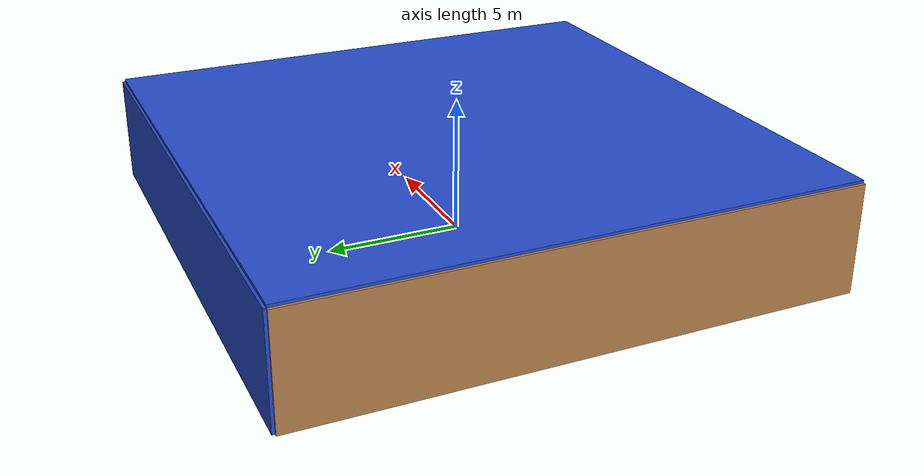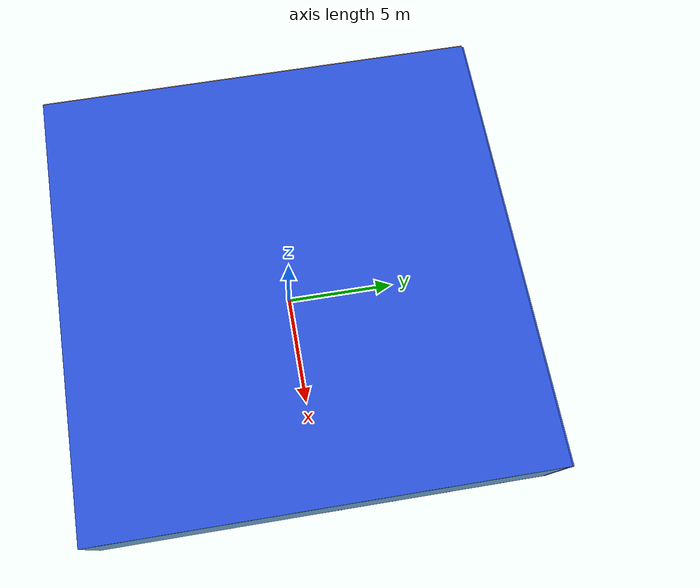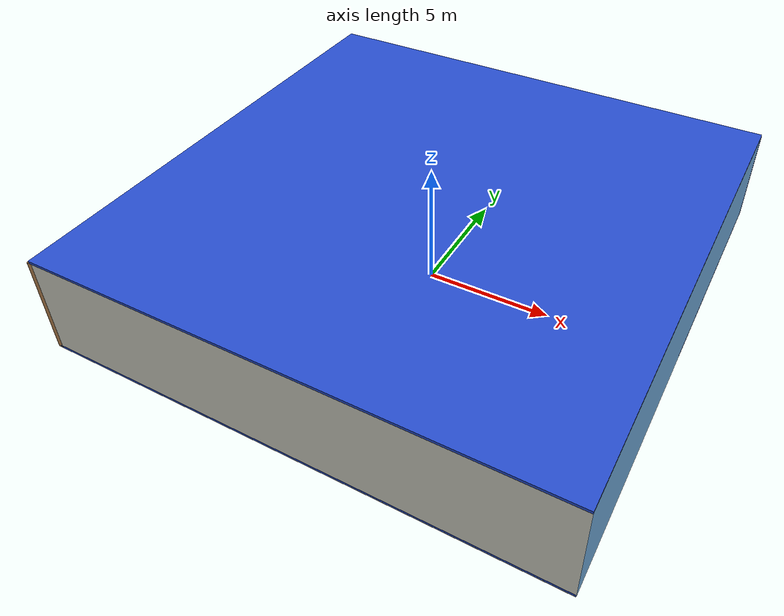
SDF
<sdf version="1.4">
 <world name="default">
  <physics type="ode">
   <max_step_size>0.001</max_step_size>
   <real_time_factor>1</real_time_factor>
   <real_time_update_rate>1000</real_time_update_rate>
   <gravity>0 0 -9.8</gravity>
  </physics>
  <scene><ambient>0.4 0.4 0.4 1</ambient><background>0.7 0.7 0.7 1</background><shadows>1</shadows></scene>
  <model name="Surrounding">
   <static>1</static>
   <link name="Ceiling">
    <collision name="Ceiling_Collision"><geometry><box><size>20 20 0.1</size></box></geometry></collision>
    <visual name="Ceiling_Visual">
     <geometry><box><size>20 20 0.1</size></box></geometry>
     <material>
      <script><uri>file://media/materials/scripts/gazebo.material</uri><name>Gazebo/BlueGlow</name></script>
     </material>
    </visual>
    <pose>0 0 4.05 0 0 0</pose>
   </link>
   <link name="Wall_South">
    <collision name="Wall_South_Collision">
     <geometry><box><size>20 0 4</size></box></geometry>
     <pose>0 0 2 0 -0 0</pose>
    </collision>
    <visual name="Wall_South_Visual">
     <pose>0 0 2 0 -0 0</pose>
     <geometry><box><size>20 0 4</size></box></geometry>
     <material>
      <script><uri>file://media/materials/scripts/gazebo.material</uri><name>Gazebo/PaintedWall</name></script>
     </material>
    </visual>
    <velocity_decay><linear>0</linear><angular>0</angular></velocity_decay>
    <pose>0 -10 0 0 -0 0</pose>
   </link>
   <link name="Wall_East">
    <collision name="Wall_21_Collision">
     <geometry><box><size>20 0 4</size></box></geometry>
     <pose>0 0 2 0 -0 0</pose>
    </collision>
    <visual name="Wall_21_Visual">
     <pose>0 0 2 0 -0 0</pose>
     <geometry><box><size>20 0 4</size></box></geometry>
     <material>
      <script><uri>file://media/materials/scripts/gazebo.material</uri><name>Gazebo/SkyBlue</name></script>
     </material>
    </visual>
    <velocity_decay><linear>0</linear><angular>0</angular></velocity_decay>
    <pose>10 0 0 0 -0 1.5708</pose>
   </link>
   <link name="Wall_North">
    <collision name="Wall_22_Collision">
     <geometry><box><size>20 0.2 4</size></box></geometry>
     <pose>0 0 2 0 -0 0</pose>
    </collision>
    <visual name="Wall_22_Visual">
     <pose>0 0 2 0 -0 0</pose>
     <geometry><box><size>20 0.2 4</size></box></geometry>
     <material>
      <script><uri>file://media/materials/scripts/gazebo.material</uri><name>Gazebo/Blue</name></script>
     </material>
    </visual>
    <velocity_decay><linear>0</linear><angular>0</angular></velocity_decay>
    <pose>0 10 0 0 -0 0</pose>
   </link>
   <link name="Wall_West">
    <collision name="Wall_23_Collision">
     <geometry><box><size>20 0.2 4</size></box></geometry>
     <pose>0 0 2 0 -0 0</pose>
    </collision>
    <visual name="Wall_23_Visual">
     <pose>0 0 2 0 -0 0</pose>
     <geometry><box><size>20 0.2 4</size></box></geometry>
     <material>
      <script><uri>file://media/materials/scripts/gazebo.material</uri><name>Gazebo/Wood</name></script>
     </material>
    </visual>
    <velocity_decay><linear>0</linear><angular>0</angular></velocity_decay>
    <pose>-10 0 0 0 0 -1.5708</pose>
   </link>
   <link name="Ground_link">
    <collision name="collision">
     <pose>0 0 .05 0 -0 0</pose>
     <geometry><box><size>20 20 0.1</size></box></geometry>
    </collision>
    <visual name="visual">
     <pose>0 0 .05 0 -0 0</pose>
     <geometry><box><size>20 20 0.1</size></box></geometry>
     <material>
      <script><uri>file://media/materials/scripts/gazebo.material</uri><name>Gazebo/Blue</name></script>
     </material>
    </visual>
   </link>
   <static>1</static>
  </model>
  <spherical_coordinates>
   <surface_model>EARTH_WGS84</surface_model>
   <latitude_deg>0</latitude_deg>
   <longitude_deg>0</longitude_deg>
   <elevation>0</elevation>
   <heading_deg>0</heading_deg>
  </spherical_coordinates>
  <light name="lightball_0" type="diffuse">
   <diffuse>0.8 0.8 0.8 1</diffuse>
   <specular>0.2 0.2 0.2 1</specular>
   <attenuation>
    <range>100</range>
    <constant>0.7</constant>
    <linear>0.01</linear>
    <quadratic>0.001</quadratic>
   </attenuation>
   <direction>-0.5 0.1 -0.9</direction>
   <pose>6.04925240644 -0.171639191797 3.28046520027 0 0 0</pose>
  </light>
  <light name="lightball_1" type="diffuse">
   <diffuse>0.8 0.8 0.8 1</diffuse>
   <specular>0.2 0.2 0.2 1</specular>
   <attenuation>
    <range>100</range>
    <constant>0.7</constant>
    <linear>0.01</linear>
    <quadratic>0.001</quadratic>
   </attenuation>
   <direction>-0.5 0.1 -0.9</direction>
   <pose>-4.75241185361 4.21369402656 1.49101045478 0 0 0</pose>
  </light>
  <light name="lightball_2" type="diffuse">
   <diffuse>0.8 0.8 0.8 1</diffuse>
   <specular>0.2 0.2 0.2 1</specular>
   <attenuation>
    <range>100</range>
    <constant>0.7</constant>
    <linear>0.01</linear>
    <quadratic>0.001</quadratic>
   </attenuation>
   <direction>-0.5 0.1 -0.9</direction>
   <pose>3.74761045633 2.26099647482 3.4018581596 0 0 0</pose>
  </light>
  <light name="lightball_3" type="diffuse">
   <diffuse>0.8 0.8 0.8 1</diffuse>
   <specular>0.2 0.2 0.2 1</specular>
   <attenuation>
    <range>100</range>
    <constant>0.7</constant>
    <linear>0.01</linear>
    <quadratic>0.001</quadratic>
   </attenuation>
   <direction>-0.5 0.1 -0.9</direction>
   <pose>-4.35224617007 3.83229177058 1.67522074982 0 0 0</pose>
  </light>
  <light name="lightball_4" type="diffuse">
   <diffuse>0.8 0.8 0.8 1</diffuse>
   <specular>0.2 0.2 0.2 1</specular>
   <attenuation>
    <range>100</range>
    <constant>0.7</constant>
    <linear>0.01</linear>
    <quadratic>0.001</quadratic>
   </attenuation>
   <direction>-0.5 0.1 -0.9</direction>
   <pose>5.51615872868 -9.59937850316 2.76212713174 0 0 0</pose>
  </light>
  <light name="lightball_5" type="diffuse">
   <diffuse>0.8 0.8 0.8 1</diffuse>
   <specular>0.2 0.2 0.2 1</specular>
   <attenuation>
    <range>100</range>
    <constant>0.7</constant>
    <linear>0.01</linear>
    <quadratic>0.001</quadratic>
   </attenuation>
   <direction>-0.5 0.1 -0.9</direction>
   <pose>4.28242817947 -7.58874267537 1.29135221258 0 0 0</pose>
  </light>
  <light name="lightball_6" type="diffuse">
   <diffuse>0.8 0.8 0.8 1</diffuse>
   <specular>0.2 0.2 0.2 1</specular>
   <attenuation>
    <range>100</range>
    <constant>0.7</constant>
    <linear>0.01</linear>
    <quadratic>0.001</quadratic>
   </attenuation>
   <direction>-0.5 0.1 -0.9</direction>
   <pose>-8.41398896876 8.48208177617 0.563222921778 0 0 0</pose>
  </light>
  <light name="lightball_7" type="diffuse">
   <diffuse>0.8 0.8 0.8 1</diffuse>
   <specular>0.2 0.2 0.2 1</specular>
   <attenuation>
    <range>100</range>
    <constant>0.7</constant>
    <linear>0.01</linear>
    <quadratic>0.001</quadratic>
   </attenuation>
   <direction>-0.5 0.1 -0.9</direction>
   <pose>1.17812282786 -2.53768060606 2.86595786905 0 0 0</pose>
  </light>
  <light name="lightball_8" type="diffuse">
   <diffuse>0.8 0.8 0.8 1</diffuse>
   <specular>0.2 0.2 0.2 1</specular>
   <attenuation>
    <range>100</range>
    <constant>0.7</constant>
    <linear>0.01</linear>
    <quadratic>0.001</quadratic>
   </attenuation>
   <direction>-0.5 0.1 -0.9</direction>
   <pose>-7.30109625632 6.43860643873 2.43831185603 0 0 0</pose>
  </light>
  <light name="lightball_9" type="diffuse">
   <diffuse>0.8 0.8 0.8 1</diffuse>
   <specular>0.2 0.2 0.2 1</specular>
   <attenuation>
    <range>100</range>
    <constant>0.7</constant>
    <linear>0.01</linear>
    <quadratic>0.001</quadratic>
   </attenuation>
   <direction>-0.5 0.1 -0.9</direction>
   <pose>-8.83122582588 0.525857132807 0.825209856469 0 0 0</pose>
  </light>
  <light name="lightball_10" type="diffuse">
   <diffuse>0.8 0.8 0.8 1</diffuse>
   <specular>0.2 0.2 0.2 1</specular>
   <attenuation>
    <range>100</range>
    <constant>0.7</constant>
    <linear>0.01</linear>
    <quadratic>0.001</quadratic>
   </attenuation>
   <direction>-0.5 0.1 -0.9</direction>
   <pose>-7.588412721 -2.7294190061 1.5312404711 0 0 0</pose>
  </light>
  <include>
   <uri>model://construction_cone</uri>
   <pose>-4.65025532608 -5.12636815431 0 0 0 1.61151376128</pose>
  </include>
  <include><uri>model://table</uri><pose>2.16660198164 -4.73695577357 0 0 0 2.30362281982</pose></include>
  <include><uri>model://table</uri><pose>4.63387336591 -8.07736273833 0 0 0 2.45129689332</pose></include>
  <include>
   <uri>model://construction_cone</uri>
   <pose>5.29671158323 -0.98832220806 0 0 0 1.08722505785</pose>
  </include>
  <include>
   <uri>model://textured_shapes</uri>
   <pose>4.37526012321 6.81361531432 0 0 0 0.842216170266</pose>
  </include>
 </world>
</sdf>

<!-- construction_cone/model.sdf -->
<sdf version="1.5">
  <model name="Construction Cone">
    <link name="link">
      <collision name="collision">
        <geometry>
          <mesh>
            <scale>10 10 10</scale>
            <uri>file://isr-testbed/construction_cone/meshes/construction_cone.dae</uri>
          </mesh>
        </geometry>
      </collision>
      <visual name="visual">
        <geometry>
          <mesh>
            <scale>10 10 10</scale>
            <uri>file://isr-testbed/construction_cone/meshes/construction_cone.dae</uri>
          </mesh>
        </geometry>
      </visual>
    </link>
  </model>
</sdf>

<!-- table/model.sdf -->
<sdf version="1.5">
  <model name="table">
    <static>true</static>
    <link name="link">
      <collision name="surface">
        <pose>0 0 1.0 0 0 0</pose>
        <geometry>
          <box>
            <size>1.5 0.8 0.03</size>
          </box>
        </geometry>
        <surface>
          <friction>
            <ode>
              <mu>0.6</mu>
              <mu2>0.6</mu2>
            </ode>
          </friction>
        </surface>
      </collision>
      <visual name="visual1">
        <pose>0 0 1.0 0 0 0</pose>
        <geometry>
          <box>
            <size>1.5 0.8 0.03</size>
          </box>
        </geometry>
        <material>
          <script>
            <uri>model://media/materials/scripts/gazebo.material</uri>
            <name>Gazebo/Wood</name>
          </script>
        </material>
      </visual>
      <collision name="front_left_leg">
        <pose>0.68 0.38 0.5 0 0 0</pose>
        <geometry>
          <cylinder>
            <radius>0.02</radius>
            <length>1.0</length>
          </cylinder>
        </geometry>
      </collision>
      <visual name="front_left_leg">
        <pose>0.68 0.38 0.5 0 0 0</pose>
        <geometry>
          <cylinder>
            <radius>0.02</radius>
            <length>1.0</length>
          </cylinder>
        </geometry>
        <material>
          <script>
            <uri>model://media/materials/scripts/gazebo.material</uri>
            <name>Gazebo/Grey</name>
          </script>
        </material>
      </visual>
      <collision name="front_right_leg">
        <pose>0.68 -0.38 0.5 0 0 0</pose>
        <geometry>
          <cylinder>
            <radius>0.02</radius>
            <length>1.0</length>
          </cylinder>
        </geometry>
      </collision>
      <visual name="front_right_leg">
        <pose>0.68 -0.38 0.5 0 0 0</pose>
        <geometry>
          <cylinder>
            <radius>0.02</radius>
            <length>1.0</length>
          </cylinder>
        </geometry>
        <material>
          <script>
            <uri>model://media/materials/scripts/gazebo.material</uri>
            <name>Gazebo/Grey</name>
          </script>
        </material>
      </visual>
      <collision name="back_right_leg">
        <pose>-0.68 -0.38 0.5 0 0 0</pose>
        <geometry>
          <cylinder>
            <radius>0.02</radius>
            <length>1.0</length>
          </cylinder>
        </geometry>
      </collision>
      <visual name="back_right_leg">
        <pose>-0.68 -0.38 0.5 0 0 0</pose>
        <geometry>
          <cylinder>
            <radius>0.02</radius>
            <length>1.0</length>
          </cylinder>
        </geometry>
        <material>
          <script>
            <uri>model://media/materials/scripts/gazebo.material</uri>
            <name>Gazebo/Grey</name>
          </script>
        </material>
      </visual>
      <collision name="back_left_leg">
        <pose>-0.68 0.38 0.5 0 0 0</pose>
        <geometry>
          <cylinder>
            <radius>0.02</radius>
            <length>1.0</length>
          </cylinder>
        </geometry>
      </collision>
      <visual name="back_left_leg">
        <pose>-0.68 0.38 0.5 0 0 0</pose>
        <geometry>
          <cylinder>
            <radius>0.02</radius>
            <length>1.0</length>
          </cylinder>
        </geometry>
        <material>
          <script>
            <uri>model://media/materials/scripts/gazebo.material</uri>
            <name>Gazebo/Grey</name>
          </script>
        </material>
      </visual>
    </link>
  </model>
</sdf>

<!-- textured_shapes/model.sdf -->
<sdf version="1.6">
  <model name="textured_shapes">
    <pose>0 0 0.5 0 0 0</pose>
    <link name="box">
      <pose>0 -1.5 0 0 0 0</pose>
      <collision name="collision">
        <geometry>
          <box>
            <size>1 1 1</size>
          </box>
        </geometry>
      </collision>
      <visual name="visual">
        <geometry>
          <box>
            <size>1 1 1</size>
          </box>
        </geometry>
        <material>
          <script>
            <uri>model://../model_source/models/textured_shapes/materials/scripts</uri>
            <uri>model://../model_source/models/textured_shapes/materials/textures</uri>
            <name>TexturedShape/Squares</name>
          </script>
        </material>
      </visual>
    </link>
    <link name="sphere">
      <collision name="collision">
        <geometry>
          <sphere>
            <radius>0.5</radius>
          </sphere>
        </geometry>
      </collision>
      <visual name="visual">
        <geometry>
          <sphere>
            <radius>0.5</radius>
          </sphere>
        </geometry>
        <material>
          <script>
            <uri>model://../model_source/models/textured_shapes/materials/scripts</uri>
            <uri>model://../model_source/models/textured_shapes/materials/textures</uri>
            <name>TexturedShape/Squares</name>
          </script>
        </material>
      </visual>
    </link>
    <link name="cylinder">
      <pose>0 1.5 0 0 0 0</pose>
      <collision name="collision">
        <geometry>
          <cylinder>
            <radius>0.5</radius>
            <length>1</length>
          </cylinder>
        </geometry>
      </collision>
      <visual name="visual">
        <geometry>
          <cylinder>
            <radius>0.5</radius>
            <length>1</length>
          </cylinder>
        </geometry>
        <material>
          <script>
            <uri>model://../model_source/models/textured_shapes/materials/scripts</uri>
            <uri>model://../model_source/models/textured_shapes/materials/textures</uri>
            <name>TexturedShape/Squares</name>
          </script>
        </material>
      </visual>
    </link>
  </model>
</sdf>
